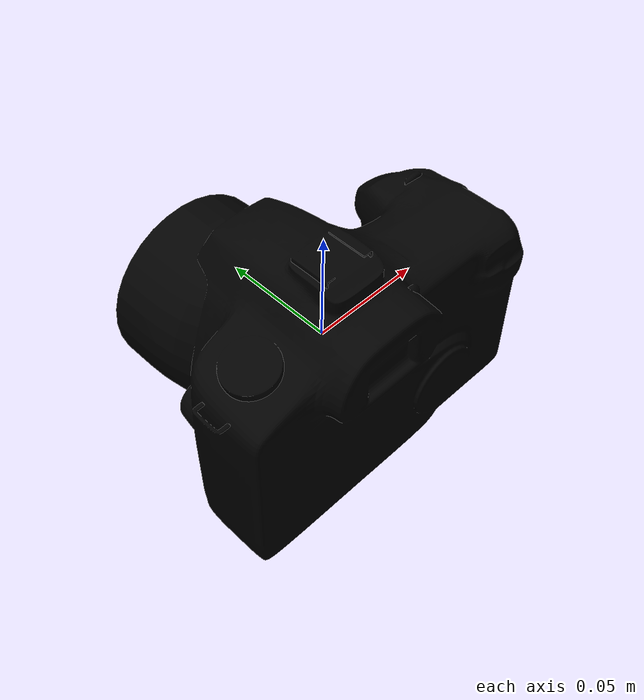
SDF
<?xml version="1.0"?>
<sdf version="1.9">
  <model name="mock_camera">
    <static>false</static>
    <self_collide>false</self_collide>

    <link name="link">
      <visual name="visual">
        <geometry>
          <mesh>
            <uri>model://thesis/DAE/Camera.dae</uri>
          </mesh>
        </geometry>
      </visual>
    </link>
  </model>
</sdf>
